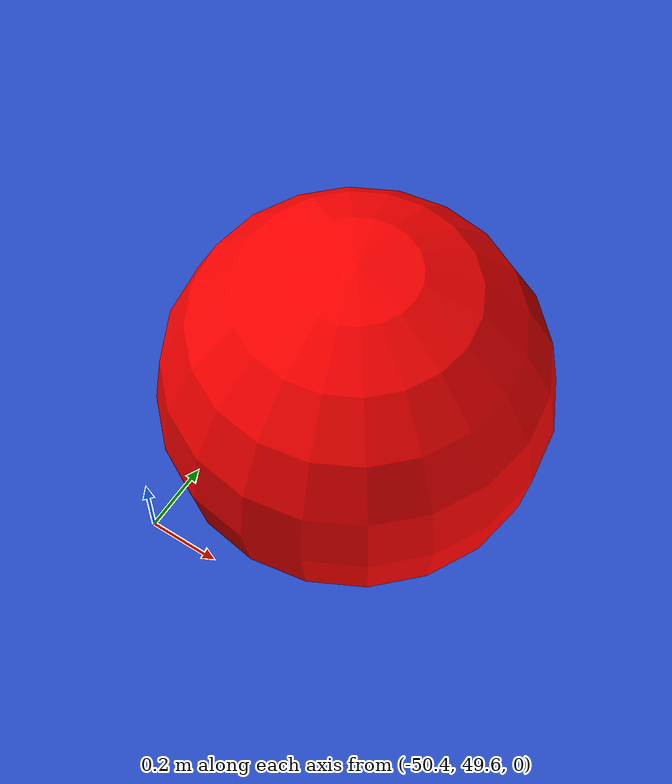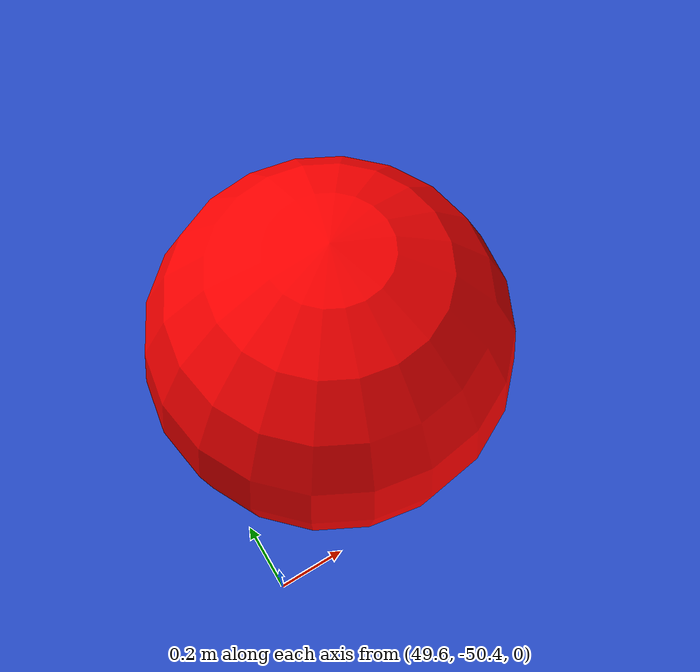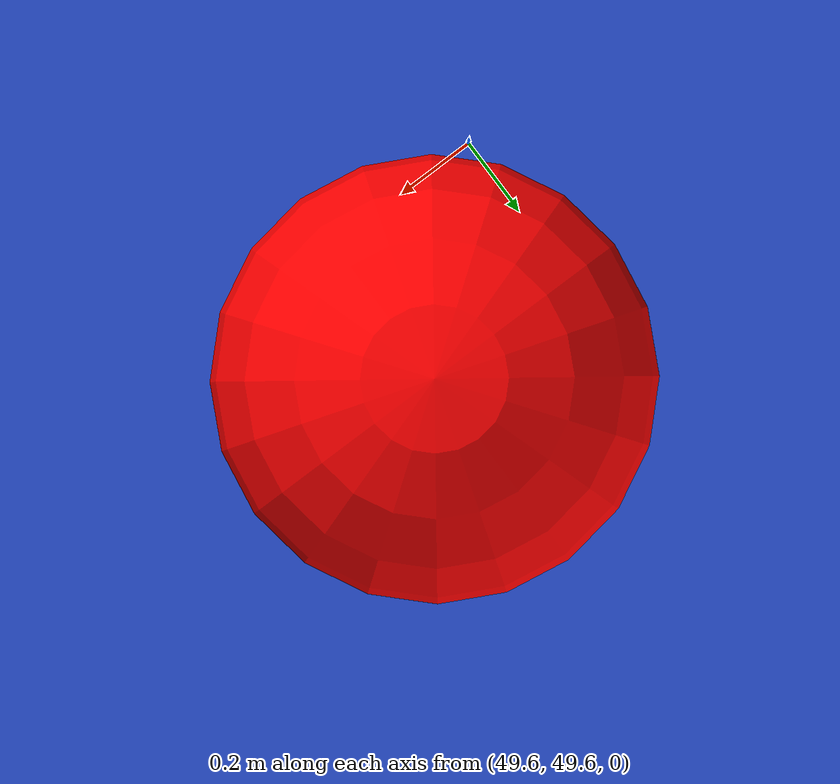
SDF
<?xml version="1.0" ?>
<sdf version="1.6">
  <world name="matsyota_aquatic_farm">

    <include>
      <uri>model://sun</uri>
    </include>

    <model name="water_plane">
      <static>true</static>
      <link name="link">
        <visual name="visual">
          <geometry>
            <plane>
              <normal>0 0 1</normal>
              <size>200 200</size> </plane>
          </geometry>
          <material>
            <script>
              <uri>file://media/materials/scripts/gazebo.material</uri>
              <name>Gazebo/Blue</name>
            </script>
          </material>
        </visual>
      </link>
    </model>

    <model name="buoy_top_right">
      <static>true</static>
      <pose>50 50 0.5 0 0 0</pose>
      <link name="link">
        <visual name="visual">
          <geometry><sphere><radius>0.5</radius></sphere></geometry>
          <material><ambient>1 0 0 1</ambient><diffuse>1 0 0 1</diffuse></material>
        </visual>
      </link>
    </model>

    <model name="buoy_top_left">
      <static>true</static>
      <pose>-50 50 0.5 0 0 0</pose>
      <link name="link">
        <visual name="visual">
          <geometry><sphere><radius>0.5</radius></sphere></geometry>
          <material><ambient>1 0 0 1</ambient><diffuse>1 0 0 1</diffuse></material>
        </visual>
      </link>
    </model>

    <model name="buoy_bottom_left">
      <static>true</static>
      <pose>-50 -50 0.5 0 0 0</pose>
      <link name="link">
        <visual name="visual">
          <geometry><sphere><radius>0.5</radius></sphere></geometry>
          <material><ambient>1 0 0 1</ambient><diffuse>1 0 0 1</diffuse></material>
        </visual>
      </link>
    </model>

    <model name="buoy_bottom_right">
      <static>true</static>
      <pose>50 -50 0.5 0 0 0</pose>
      <link name="link">
        <visual name="visual">
          <geometry><sphere><radius>0.5</radius></sphere></geometry>
          <material><ambient>1 0 0 1</ambient><diffuse>1 0 0 1</diffuse></material>
        </visual>
      </link>
    </model>

    <physics type="ode">
      <max_step_size>0.01</max_step_size>
      <real_time_factor>1</real_time_factor>
      <real_time_update_rate>100</real_time_update_rate>
    </physics>

  </world>
</sdf>
